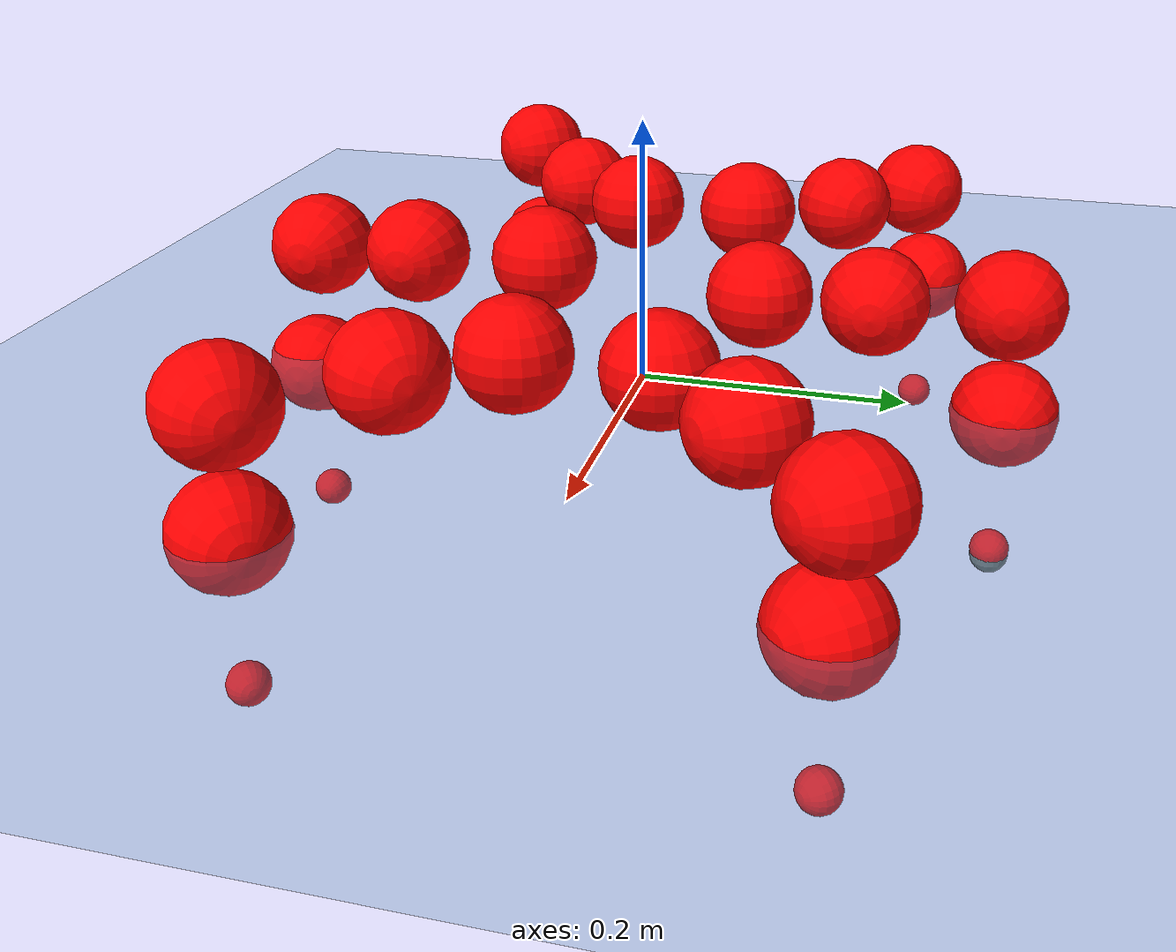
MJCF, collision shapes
<mujoco model="Golem">
  <compiler angle="radian" assetdir="assets" balanceinertia="true" inertiafromgeom="false"/>

  <option timestep="0.005" density="1.2" viscosity="2e-05"/>

  <size nkey="1"/>

  <visual>
    <quality shadowsize="8192"/>
    <map shadowclip="0.5"/>
  </visual>

  <default>
    <default class="/">
      <joint armature="0.01" damping="0.01" frictionloss="0.01"/>
      <geom contype="0" conaffinity="0" group="1" solref="-1000 -80"/>
      <site size="0.01 0.005 0.005" group="5"/>
      <general forcelimited="true" biastype="affine" gainprm="25" biasprm="0 -25 -0.5"/>
      <default class="visual">
        <geom type="mesh" group="2"/>
      </default>
      <default class="collision">
        <geom group="3"/>
      </default>
      <default class="foot">
        <geom size="0.01 0 0" condim="6" group="4" priority="1" solimp="0.015 1 0.01"/>
      </default>
      <default class="reward_collision_sphere">
        <geom group="5" rgba="1 0 0 1"/>
      </default>
    </default>
  </default>

  <asset>
    <texture type="skybox" colorspace="auto" name="//unnamed_texture_0" builtin="gradient" rgb1="0.95 0.95 0.95" rgb2="0.95 0.95 0.95" width="100" height="600"/>
    <texture type="2d" colorspace="auto" name="texplane" builtin="checker" rgb1="0.345 0.575 0.748" rgb2="0.345 0.575 0.748" markrgb="1 1 1" width="512" height="512"/>
    <material name="MatPlane" class="/" texture="texplane" texuniform="true" texrepeat="2 2" specular="0.9"/>
    <mesh name="body" class="/" file="body.stl" scale="0.001 0.001 0.001"/>
    <mesh name="coxa" class="/" file="coxa.stl" scale="0.001 0.001 0.001"/>
    <mesh name="femur" class="/" file="femur.stl" scale="0.001 0.001 0.001"/>
    <mesh name="tibia" class="/" file="tibia.stl" scale="0.001 0.001 0.001"/>
    <mesh name="tarsus" class="/" file="tarsus.stl" scale="0.001 0.001 0.001"/>
  </asset>

  <worldbody>
    <geom name="floor" class="/" size="100 100 0.125" type="plane" group="0" material="MatPlane"/>
    <light name="toplight_shadow" class="/" pos="0 0 5" dir="0.0990148 0.0990148 -0.990148" type="directional" ambient="0.04 0.04 0.04" diffuse="0.55 0.55 0.55" specular="0.12 0.12 0.12"/>
    <light name="toplight_fill" class="/" pos="0 0 5" dir="0.0990148 0.0990148 -0.990148" type="directional" castshadow="false" ambient="0.04 0.04 0.04" diffuse="0.3 0.3 0.3" specular="0.08 0.08 0.08"/>
    <body name="trunk" pos="0.00412888 0.0010832 0.0112196" quat="1 -0.000146024 0.000203342 -0.000761793">
      <inertial pos="-0.00446834 -0.00158155 -0.0101005" quat="0.999355 0.0191386 -0.00951149 0.0288512" mass="3.36409" diaginertia="0.0169944 0.00416004 0.0130109"/>
      <joint name="//unnamed_joint_0" type="free"/>
      <geom name="//unnamed_geom_1" class="/" pos="0 0 0.0678253" quat="1 0 0 0" type="mesh" rgba="0.9 0.9 0.9 1" mesh="body"/>
      <site name="imu" class="/" pos="0.145211 -0.00371637 0.0974249" size="0.00996898"/>
      <camera name="track" class="/" pos="0 -1.70524 0" quat="0.707107 0.707107 0 0" mode="trackcom"/>
      <camera name="ego_camera" class="/" pos="0.140179 0 0.105977" quat="-0.5 -0.5 0.5 0.5"/>
      <body name="coxa_RR" pos="-0.192586 -0.0709048 0.0751941" quat="0.38269 -7.31584e-05 8.45355e-05 -0.923877">
        <inertial pos="-0.00145466 0.0109926 0.00039216" quat="0.999993 -0.0034085 0.000936844 0.00104527" mass="0.232618" diaginertia="0.0183044 0.00459946 0.0150238"/>
        <joint name="coxa_joint_RR" class="/" pos="0 0 0" axis="0.0187857 -0.0608254 -0.997972" range="-3.12156 3.27069" armature="0.0125398" damping="0.0282917" frictionloss="0.0101575"/>
        <geom name="//unnamed_geom_2" class="/" type="mesh" rgba="0.2 0.2 0.2 1" mesh="coxa"/>
        <geom name="//unnamed_geom_3" class="reward_collision_sphere" size="0.0398759" pos="-0.0323491 0 0"/>
        <body name="femur_RR" pos="0.0649559 -0.000376767 -0.00605494" quat="0.499661 -0.499834 0.50015 0.500355">
          <inertial pos="0.00103018 -0.00509791 0.00506857" quat="0.999972 0.00555714 0.00191305 0.00455895" mass="0.191964" diaginertia="0.0145304 0.00454417 0.0131597"/>
          <joint name="femur_joint_RR" class="/" pos="0 0 0" axis="-0.00614027 -0.00177436 -0.99998" stiffness="0.0192191" range="-3.16739 3.33998" armature="0.0132105" damping="0.0135309" frictionloss="0.00647129"/>
          <geom name="//unnamed_geom_4" class="/" type="mesh" rgba="0.9 0.9 0.9 1" mesh="femur"/>
          <geom name="//unnamed_geom_5" class="reward_collision_sphere" size="0.0398759"/>
          <body name="tibia_RR" pos="-0.00973964 -0.0989806 -0.00680059" quat="0.0010787 0.999997 0.000964974 -0.00174208">
            <inertial pos="0.00899377 0.00578677 0.000268327" quat="0.999282 -0.0266111 -0.0106893 -0.0247437" mass="0.197567" diaginertia="0.0160985 0.00447688 0.0133959"/>
            <joint name="tibia_joint_RR" class="/" pos="0 0 0" axis="-0.0225755 0.00855444 0.999709" range="-2.92472 3.20547" armature="0.0132819" damping="0.032538" frictionloss="0.0103207"/>
            <geom name="//unnamed_geom_6" class="/" type="mesh" rgba="0.2 0.2 0.2 1" mesh="tibia"/>
            <geom name="//unnamed_geom_7" class="reward_collision_sphere" size="0.0398759"/>
            <body name="tarsus_RR" pos="0.0927555 -0.000893516 0.00107043" quat="1 -0.000700434 5.78481e-06 -0.000150765">
              <inertial pos="0.0659728 -0.00979451 0.00705922" quat="0.500885 0.491915 0.495289 0.511685" mass="0.201394" diaginertia="0.0142346 0.00422352 0.013445"/>
              <joint name="tarsus_joint_RR" class="/" pos="0 0 0" axis="0.00020183 -0.00553204 0.999985" stiffness="0.0540535" range="-3.13322 3.14212" armature="0.00592179" damping="0.0110592" frictionloss="0.00599329"/>
              <geom name="//unnamed_geom_8" class="/" type="mesh" rgba="0.9 0.9 0.9 1" mesh="tarsus"/>
              <geom name="foot_1" class="foot" size="0.0125179" pos="0.12077 0 0" quat="0 -0.707107 0 0.707107"/>
              <geom name="//unnamed_geom_10" class="reward_collision_sphere" size="0.0398759"/>
              <geom name="//unnamed_geom_11" class="reward_collision_sphere" size="0.0149535" pos="0.115918 0 0"/>
              <site name="foot_1" class="foot" pos="0.12077 0 0" quat="0 -0.707107 0 0.707107" size="0.00996898"/>
            </body>
          </body>
        </body>
      </body>
      <body name="coxa_RM" pos="-0.00279225 -0.110323 0.079001" quat="0.706721 -0.00322536 -0.00486275 -0.707468">
        <inertial pos="0.00926929 -7.09498e-06 0.00376656" quat="1 0.000671693 -0.000462199 5.90395e-05" mass="0.221146" diaginertia="0.0170033 0.00507894 0.0141299"/>
        <joint name="coxa_joint_RM" class="/" pos="0 0 0" axis="0.00318317 -0.00541094 -0.99998" stiffness="0.0199298" range="-2.90214 3.11231" armature="0.010909" damping="0" frictionloss="0.0100456"/>
        <geom name="//unnamed_geom_12" class="/" type="mesh" rgba="0.2 0.2 0.2 1" mesh="coxa"/>
        <geom name="//unnamed_geom_13" class="reward_collision_sphere" size="0.0398759" pos="-0.0323491 0 0"/>
        <body name="femur_RM" pos="0.06938 0.00221959 -0.00299454" quat="0.496185 -0.499724 0.501745 0.502323">
          <inertial pos="-0.004114 0.00344697 -0.00323258" quat="0.998903 -0.00938022 -0.043466 -0.0146982" mass="0.178981" diaginertia="0.0131073 0.00444217 0.0118551"/>
          <joint name="femur_joint_RM" class="/" pos="0 0 0" axis="0.000596065 -0.00802526 -0.999968" stiffness="0.0558236" range="-3.17214 3.11072" armature="0.00995836" damping="0.0265787" frictionloss="0.0116119"/>
          <geom name="//unnamed_geom_14" class="/" type="mesh" rgba="0.9 0.9 0.9 1" mesh="femur"/>
          <geom name="//unnamed_geom_15" class="reward_collision_sphere" size="0.0398759"/>
          <body name="tibia_RM" pos="0.00489525 -0.0851575 -0.00934668" quat="7.26503e-06 1 3.89637e-06 6.4135e-07">
            <inertial pos="0.00227338 -0.0125972 0.00120316" quat="0.999987 0.0047345 0.00161235 0.000121745" mass="0.170491" diaginertia="0.0128091 0.00390705 0.010772"/>
            <joint name="tibia_joint_RM" class="/" pos="0 0 0" axis="0.0248762 -0.0122814 0.999615" stiffness="0.000137402" range="-3.27686 3.39483" armature="0.00731245" damping="0.0587842" frictionloss="0.0105818"/>
            <geom name="//unnamed_geom_16" class="/" type="mesh" rgba="0.2 0.2 0.2 1" mesh="tibia"/>
            <geom name="//unnamed_geom_17" class="reward_collision_sphere" size="0.0398759"/>
            <body name="tarsus_RM" pos="0.10186 0.00987625 -0.00511073" quat="0.999993 0.00107409 -0.00100666 -0.00331604">
              <inertial pos="0.0613847 -0.0114617 -0.00287543" quat="0.499924 0.496097 0.505579 0.49835" mass="0.247969" diaginertia="0.0155856 0.00485585 0.0153712"/>
              <joint name="tarsus_joint_RM" class="/" pos="0 0 0" axis="0.0262091 -0.00569175 0.99964" range="-3.17305 3.15187" armature="0.00716844" damping="0" frictionloss="0.00992865"/>
              <geom name="//unnamed_geom_18" class="/" type="mesh" rgba="0.9 0.9 0.9 1" mesh="tarsus"/>
              <geom name="foot_2" class="foot" size="0.00880774" pos="0.12077 0 0" quat="0 -0.707107 0 0.707107"/>
              <geom name="//unnamed_geom_20" class="reward_collision_sphere" size="0.0398759"/>
              <geom name="//unnamed_geom_21" class="reward_collision_sphere" size="0.0149535" pos="0.115918 0 0"/>
              <site name="foot_2" class="foot" pos="0.12077 0 0" quat="0 -0.707107 0 0.707107" size="0.00996898"/>
            </body>
          </body>
        </body>
      </body>
      <body name="coxa_RF" pos="0.186001 -0.0680977 0.0730746" quat="0.92425 -0.00287554 -0.000432038 -0.381777">
        <inertial pos="0.00986076 -0.00121264 -0.00845528" quat="0.999638 0.00568047 -0.00371492 -0.0260409" mass="0.161945" diaginertia="0.0132168 0.00439686 0.0121606"/>
        <joint name="coxa_joint_RF" class="/" pos="0 0 0" axis="0.0221769 -0.0157613 -0.99963" stiffness="0.0122182" range="-3.02686 3.14435" armature="0.01441" damping="0" frictionloss="0.0069663"/>
        <geom name="//unnamed_geom_22" class="/" type="mesh" rgba="0.2 0.2 0.2 1" mesh="coxa"/>
        <geom name="//unnamed_geom_23" class="reward_collision_sphere" size="0.0398759" pos="-0.0323491 0 0"/>
        <body name="femur_RF" pos="0.0534278 -0.000902718 0.00642556" quat="0.496558 -0.503042 0.499401 0.500976">
          <inertial pos="0.000144252 0.00407588 0.000199121" quat="0.999999 -0.00116537 0.000824028 0.000634111" mass="0.253887" diaginertia="0.0145545 0.00534163 0.016471"/>
          <joint name="femur_joint_RF" class="/" pos="0 0 0" axis="0.00492613 -0.000138279 -0.999988" stiffness="0.0583111" range="-3.20616 3.35138" armature="0.0156553" damping="0.00658802" frictionloss="0.0158924"/>
          <geom name="//unnamed_geom_24" class="/" type="mesh" rgba="0.9 0.9 0.9 1" mesh="femur"/>
          <geom name="//unnamed_geom_25" class="reward_collision_sphere" size="0.0398759"/>
          <body name="tibia_RF" pos="0.00252206 -0.103156 -0.0113641" quat="0.000331928 1 -0.000221186 -0.000347421">
            <inertial pos="0.0100534 0.00131168 -0.000253212" quat="0.999981 0.00395662 -0.00281122 -0.00386368" mass="0.215566" diaginertia="0.0172879 0.00486634 0.014319"/>
            <joint name="tibia_joint_RF" class="/" pos="0 0 0" axis="-0.023682 -0.00724415 0.999693" stiffness="0.0213241" range="-3.26141 3.15646" armature="0.00998817" damping="0.0545089" frictionloss="0.00719437"/>
            <geom name="//unnamed_geom_26" class="/" type="mesh" rgba="0.2 0.2 0.2 1" mesh="tibia"/>
            <geom name="//unnamed_geom_27" class="reward_collision_sphere" size="0.0398759"/>
            <body name="tarsus_RF" pos="0.0920404 0.000206359 0.00991094" quat="0.999994 0.00146807 -0.0032473 -0.000130244">
              <inertial pos="0.0740541 0.00553461 -0.00159211" quat="0.507391 0.4866 0.543968 0.458119" mass="0.207144" diaginertia="0.0154716 0.00435127 0.0161451"/>
              <joint name="tarsus_joint_RF" class="/" pos="0 0 0" axis="-0.00965778 -0.0241324 0.999662" stiffness="0.00151134" range="-3.11054 3.15924" armature="0.015161" damping="0.0173964" frictionloss="0.0145032"/>
              <geom name="//unnamed_geom_28" class="/" type="mesh" rgba="0.9 0.9 0.9 1" mesh="tarsus"/>
              <geom name="foot_3" class="foot" size="0.0100513" pos="0.12077 0 0" quat="0 -0.707107 0 0.707107"/>
              <geom name="//unnamed_geom_30" class="reward_collision_sphere" size="0.0398759"/>
              <geom name="//unnamed_geom_31" class="reward_collision_sphere" size="0.0149535" pos="0.115918 0 0"/>
              <site name="foot_3" class="foot" pos="0.12077 0 0" quat="0 -0.707107 0 0.707107" size="0.00996898"/>
            </body>
          </body>
        </body>
      </body>
      <body name="coxa_LR" pos="-0.189957 0.0710264 0.0761672" quat="0.382341 -0.000404646 0.000468917 0.924021">
        <inertial pos="-0.00320166 0.000814042 -0.00122119" quat="0.998502 -0.0446612 -0.0104411 -0.0298203" mass="0.188316" diaginertia="0.0145126 0.00374401 0.0131381"/>
        <joint name="coxa_joint_LR" class="/" pos="0 0 0" axis="0.0116874 0.0159576 -0.999804" range="-3.17146 3.05391" armature="0.00551361" damping="0.0122314" frictionloss="0.00851447"/>
        <geom name="//unnamed_geom_32" class="/" type="mesh" rgba="0.2 0.2 0.2 1" mesh="coxa"/>
        <geom name="//unnamed_geom_33" class="reward_collision_sphere" size="0.0398759" pos="-0.0323491 0 0"/>
        <body name="femur_LR" pos="0.0658917 -0.00621827 -0.00846873" quat="0.501218 -0.500515 0.501316 0.496938">
          <inertial pos="0.0089686 0.0106558 -0.0106314" quat="0.999997 0.0018506 0.0011399 0.00128452" mass="0.161678" diaginertia="0.0128581 0.00371697 0.0129528"/>
          <joint name="femur_joint_LR" class="/" pos="0 0 0" axis="0.0207363 -0.0523353 0.998414" stiffness="0.0240812" range="-2.99985 3.29339" armature="0.00363073" damping="0.0182841" frictionloss="0.0144004"/>
          <geom name="//unnamed_geom_34" class="/" type="mesh" rgba="0.9 0.9 0.9 1" mesh="femur"/>
          <geom name="//unnamed_geom_35" class="reward_collision_sphere" size="0.0398759"/>
          <body name="tibia_LR" pos="2.832e-06 -0.0843936 0.00176419" quat="-0.000624545 1 -0.000263387 -6.19793e-05">
            <inertial pos="0.00041439 0.0105875 0.000862864" quat="0.999711 -0.00668789 0.00364351 -0.0228115" mass="0.236831" diaginertia="0.017032 0.0045895 0.0166057"/>
            <joint name="tibia_joint_LR" class="/" pos="0 0 0" axis="-0.0401527 0.0294901 -0.998758" stiffness="0.0489471" range="-3.11325 3.33522" armature="0.0099335" damping="0.00809106" frictionloss="0.00651861"/>
            <geom name="//unnamed_geom_36" class="/" type="mesh" rgba="0.2 0.2 0.2 1" mesh="tibia"/>
            <geom name="//unnamed_geom_37" class="reward_collision_sphere" size="0.0398759"/>
            <body name="tarsus_LR" pos="0.0831325 0.00947865 0.00607694" quat="0.999994 0.00318343 -0.000803055 0.000505119">
              <inertial pos="0.0683205 -0.00397486 0.00795791" quat="0.495833 0.501158 0.498321 0.504644" mass="0.217304" diaginertia="0.0151152 0.0042548 0.0133706"/>
              <joint name="tarsus_joint_LR" class="/" pos="0 0 0" axis="-0.00987017 0.00518468 -0.999938" stiffness="0.0193621" range="-2.98248 3.13182" armature="0.0143773" damping="0.0181452" frictionloss="0.0092791"/>
              <geom name="//unnamed_geom_38" class="/" type="mesh" rgba="0.9 0.9 0.9 1" mesh="tarsus"/>
              <geom name="foot_4" class="foot" size="0.00994872" pos="0.12077 0 0" quat="0.707107 0 -0.707107 0"/>
              <geom name="//unnamed_geom_40" class="reward_collision_sphere" size="0.0398759"/>
              <geom name="//unnamed_geom_41" class="reward_collision_sphere" size="0.0149535" pos="0.115918 0 0"/>
              <site name="foot_4" class="foot" pos="0.12077 0 0" quat="0.707107 0 -0.707107 0" size="0.00996898"/>
            </body>
          </body>
        </body>
      </body>
      <body name="coxa_LM" pos="-0.0108499 0.118474 0.0619524" quat="0.706669 0.000231265 0.000194424 0.707544">
        <inertial pos="-0.00617952 -0.00281707 -0.00333106" quat="0.999697 -0.023848 0.00600955 -0.000655159" mass="0.217344" diaginertia="0.0128416 0.00467412 0.0128823"/>
        <joint name="coxa_joint_LM" class="/" pos="0 0 0" axis="0.0409803 -0.0287495 -0.998746" stiffness="0.0175991" range="-3.22166 2.90321" armature="0.0099246" damping="0.0195524" frictionloss="0.00917399"/>
        <geom name="//unnamed_geom_42" class="/" type="mesh" rgba="0.2 0.2 0.2 1" mesh="coxa"/>
        <geom name="//unnamed_geom_43" class="reward_collision_sphere" size="0.0398759" pos="-0.0323491 0 0"/>
        <body name="femur_LM" pos="0.0524242 0.00076425 0.00209626" quat="0.502561 -0.499868 0.496348 0.501201">
          <inertial pos="-0.00744218 0.000259128 0.00683683" quat="0.999968 0.00674428 0.00279533 -0.00332327" mass="0.153967" diaginertia="0.0132588 0.00404992 0.0107746"/>
          <joint name="femur_joint_LM" class="/" pos="0 0 0" axis="0.036734 0.0149818 0.999213" range="-2.93259 3.34403" armature="0.00875567" damping="0" frictionloss="0.00652423"/>
          <geom name="//unnamed_geom_44" class="/" type="mesh" rgba="0.9 0.9 0.9 1" mesh="femur"/>
          <geom name="//unnamed_geom_45" class="reward_collision_sphere" size="0.0398759"/>
          <body name="tibia_LM" pos="-0.00298272 -0.0961432 0.00671841" quat="-0.000364958 0.999999 -0.000753194 -0.000789788">
            <inertial pos="-0.00684114 -0.00519629 0.001636" quat="0.999876 -0.0150467 -0.000881273 0.00449328" mass="0.175576" diaginertia="0.0132642 0.00480034 0.0115193"/>
            <joint name="tibia_joint_LM" class="/" pos="0 0 0" axis="0.0340337 -0.00270739 -0.999417" stiffness="0.0637805" range="-3.16603 3.1355" armature="0.0149616" damping="0.0354131" frictionloss="0.00920817"/>
            <geom name="//unnamed_geom_46" class="/" type="mesh" rgba="0.2 0.2 0.2 1" mesh="tibia"/>
            <geom name="//unnamed_geom_47" class="reward_collision_sphere" size="0.0398759"/>
            <body name="tarsus_LM" pos="0.0861412 0.0026873 -0.000867357" quat="1 0.000112707 6.00541e-05 -0.00020741">
              <inertial pos="0.0633518 -0.000454542 -0.00842693" quat="0.501213 0.505541 0.511886 0.480819" mass="0.20887" diaginertia="0.0167157 0.00403888 0.0131299"/>
              <joint name="tarsus_joint_LM" class="/" pos="0 0 0" axis="0.00531188 0.0052412 -0.999972" stiffness="0.0356177" range="-3.08794 3.17258" armature="0.0100173" damping="0" frictionloss="0.0100953"/>
              <geom name="//unnamed_geom_48" class="/" type="mesh" rgba="0.9 0.9 0.9 1" mesh="tarsus"/>
              <geom name="foot_5" class="foot" size="0.0145966" pos="0.12077 0 0" quat="0.707107 0 -0.707107 0"/>
              <geom name="//unnamed_geom_50" class="reward_collision_sphere" size="0.0398759"/>
              <geom name="//unnamed_geom_51" class="reward_collision_sphere" size="0.0149535" pos="0.115918 0 0"/>
              <site name="foot_5" class="foot" pos="0.12077 0 0" quat="0.707107 0 -0.707107 0" size="0.00996898"/>
            </body>
          </body>
        </body>
      </body>
      <body name="coxa_LF" pos="0.18075 0.0741646 0.0701577" quat="0.922907 0.00449222 0.0010792 0.384995">
        <inertial pos="-0.00113208 -0.00042018 -0.00838473" quat="0.999956 -0.00650954 -0.00353006 0.00575126" mass="0.210283" diaginertia="0.0140517 0.00546907 0.0138439"/>
        <joint name="coxa_joint_LF" class="/" pos="0 0 0" axis="0.0207422 -0.0395362 -0.999003" stiffness="0.0153527" range="-3.15269 3.14653" armature="0.0101311" damping="0.00320058" frictionloss="0.0142713"/>
        <geom name="//unnamed_geom_52" class="/" type="mesh" rgba="0.2 0.2 0.2 1" mesh="coxa"/>
        <geom name="//unnamed_geom_53" class="reward_collision_sphere" size="0.0398759" pos="-0.0323491 0 0"/>
        <body name="femur_LF" pos="0.0566984 0.00501863 -0.00135054" quat="0.498634 -0.499656 0.50068 0.501026">
          <inertial pos="0.00150893 0.000921469 -0.0104121" quat="0.999406 -0.0107129 0.0182387 0.0271966" mass="0.165859" diaginertia="0.0159956 0.00458619 0.0134676"/>
          <joint name="femur_joint_LF" class="/" pos="0 0 0" axis="-0.0234967 -0.0315567 0.999226" stiffness="0.00603296" range="-3.13403 3.13204" armature="0.00922658" damping="0.0153236" frictionloss="0.00523587"/>
          <geom name="//unnamed_geom_54" class="/" type="mesh" rgba="0.9 0.9 0.9 1" mesh="femur"/>
          <geom name="//unnamed_geom_55" class="reward_collision_sphere" size="0.0398759"/>
          <body name="tibia_LF" pos="0.00141215 -0.104752 -0.00868844" quat="-0.00297223 0.999985 0.00398987 0.00242675">
            <inertial pos="-0.000344206 -0.00111035 0.00806157" quat="0.998544 -0.0222441 -0.000278159 -0.0491449" mass="0.178628" diaginertia="0.0125028 0.00440921 0.0131584"/>
            <joint name="tibia_joint_LF" class="/" pos="0 0 0" axis="0.000729594 -0.000900394 -0.999999" stiffness="0.041341" range="-3.39078 3.05579" armature="0.00996856" damping="0" frictionloss="0.0100287"/>
            <geom name="//unnamed_geom_56" class="/" type="mesh" rgba="0.2 0.2 0.2 1" mesh="tibia"/>
            <geom name="//unnamed_geom_57" class="reward_collision_sphere" size="0.0398759"/>
            <body name="tarsus_LF" pos="0.0843059 -0.00874415 0.000166991" quat="0.999997 -0.000376948 -0.000299303 0.00233424">
              <inertial pos="0.0761822 0.00277863 0.00156282" quat="0.499569 0.500221 0.500606 0.499603" mass="0.231436" diaginertia="0.0169049 0.00528006 0.0125727"/>
              <joint name="tarsus_joint_LF" class="/" pos="0 0 0" axis="0.0372459 -0.0297502 -0.998863" stiffness="0.0409396" range="-3.16813 3.31072" armature="0.00468774" damping="0" frictionloss="0.00391768"/>
              <geom name="//unnamed_geom_58" class="/" type="mesh" rgba="0.9 0.9 0.9 1" mesh="tarsus"/>
              <geom name="foot_6" class="foot" size="0.00933784" pos="0.12077 0 0" quat="0.707107 0 -0.707107 0"/>
              <geom name="//unnamed_geom_60" class="reward_collision_sphere" size="0.0398759"/>
              <geom name="//unnamed_geom_61" class="reward_collision_sphere" size="0.0149535" pos="0.115918 0 0"/>
              <site name="foot_6" class="foot" pos="0.12077 0 0" quat="0.707107 0 -0.707107 0" size="0.00996898"/>
            </body>
          </body>
        </body>
      </body>
    </body>
  </worldbody>

  <contact>
    <pair class="/" geom1="floor" geom2="foot_1" name="//unnamed_contact_0"/>
    <pair class="/" geom1="floor" geom2="foot_2" name="//unnamed_contact_1"/>
    <pair class="/" geom1="floor" geom2="foot_3" name="//unnamed_contact_2"/>
    <pair class="/" geom1="floor" geom2="foot_4" name="//unnamed_contact_3"/>
    <pair class="/" geom1="floor" geom2="foot_5" name="//unnamed_contact_4"/>
    <pair class="/" geom1="floor" geom2="foot_6" name="//unnamed_contact_5"/>
  </contact>

  <actuator>
    <general name="coxa_joint_RR" class="/" joint="coxa_joint_RR" forcerange="-5.61372 5.61372" gainprm="23.9673" biasprm="0 -23.9673 -0.496378"/>
    <general name="femur_joint_RR" class="/" joint="femur_joint_RR" forcerange="-5.23508 5.23508" gainprm="23.9673" biasprm="0 -23.9673 -0.496378"/>
    <general name="tibia_joint_RR" class="/" joint="tibia_joint_RR" forcerange="-9.42508 9.42508" gainprm="23.9673" biasprm="0 -23.9673 -0.496378"/>
    <general name="tarsus_joint_RR" class="/" joint="tarsus_joint_RR" forcerange="-9.62755 9.62755" gainprm="23.9673" biasprm="0 -23.9673 -0.496378"/>
    <general name="coxa_joint_RM" class="/" joint="coxa_joint_RM" forcerange="-10.1027 10.1027" gainprm="23.9673" biasprm="0 -23.9673 -0.496378"/>
    <general name="femur_joint_RM" class="/" joint="femur_joint_RM" forcerange="-7.13897 7.13897" gainprm="23.9673" biasprm="0 -23.9673 -0.496378"/>
    <general name="tibia_joint_RM" class="/" joint="tibia_joint_RM" forcerange="-6.83893 6.83893" gainprm="23.9673" biasprm="0 -23.9673 -0.496378"/>
    <general name="tarsus_joint_RM" class="/" joint="tarsus_joint_RM" forcerange="-6.91844 6.91844" gainprm="23.9673" biasprm="0 -23.9673 -0.496378"/>
    <general name="coxa_joint_RF" class="/" joint="coxa_joint_RF" forcerange="-7.47032 7.47032" gainprm="23.9673" biasprm="0 -23.9673 -0.496378"/>
    <general name="femur_joint_RF" class="/" joint="femur_joint_RF" forcerange="-3.89177 3.89177" gainprm="23.9673" biasprm="0 -23.9673 -0.496378"/>
    <general name="tibia_joint_RF" class="/" joint="tibia_joint_RF" forcerange="-4.3648 4.3648" gainprm="23.9673" biasprm="0 -23.9673 -0.496378"/>
    <general name="tarsus_joint_RF" class="/" joint="tarsus_joint_RF" forcerange="-4.57943 4.57943" gainprm="23.9673" biasprm="0 -23.9673 -0.496378"/>
    <general name="coxa_joint_LR" class="/" joint="coxa_joint_LR" forcerange="-7.45801 7.45801" gainprm="23.9673" biasprm="0 -23.9673 -0.496378"/>
    <general name="femur_joint_LR" class="/" joint="femur_joint_LR" forcerange="-7.7165 7.7165" gainprm="23.9673" biasprm="0 -23.9673 -0.496378"/>
    <general name="tibia_joint_LR" class="/" joint="tibia_joint_LR" forcerange="-4.00534 4.00534" gainprm="23.9673" biasprm="0 -23.9673 -0.496378"/>
    <general name="tarsus_joint_LR" class="/" joint="tarsus_joint_LR" forcerange="-4.36687 4.36687" gainprm="23.9673" biasprm="0 -23.9673 -0.496378"/>
    <general name="coxa_joint_LM" class="/" joint="coxa_joint_LM" forcerange="-7.61955 7.61955" gainprm="23.9673" biasprm="0 -23.9673 -0.496378"/>
    <general name="femur_joint_LM" class="/" joint="femur_joint_LM" forcerange="-7.14016 7.14016" gainprm="23.9673" biasprm="0 -23.9673 -0.496378"/>
    <general name="tibia_joint_LM" class="/" joint="tibia_joint_LM" forcerange="-7.24578 7.24578" gainprm="23.9673" biasprm="0 -23.9673 -0.496378"/>
    <general name="tarsus_joint_LM" class="/" joint="tarsus_joint_LM" forcerange="-8.20506 8.20506" gainprm="23.9673" biasprm="0 -23.9673 -0.496378"/>
    <general name="coxa_joint_LF" class="/" joint="coxa_joint_LF" forcerange="-6.97951 6.97951" gainprm="23.9673" biasprm="0 -23.9673 -0.496378"/>
    <general name="femur_joint_LF" class="/" joint="femur_joint_LF" forcerange="-4.66156 4.66156" gainprm="23.9673" biasprm="0 -23.9673 -0.496378"/>
    <general name="tibia_joint_LF" class="/" joint="tibia_joint_LF" forcerange="-4.86328 4.86328" gainprm="23.9673" biasprm="0 -23.9673 -0.496378"/>
    <general name="tarsus_joint_LF" class="/" joint="tarsus_joint_LF" forcerange="-7.44098 7.44098" gainprm="23.9673" biasprm="0 -23.9673 -0.496378"/>
  </actuator>

  <sensor>
    <gyro site="imu" name="imu_angular_velocity"/>
    <velocimeter site="imu" name="imu_linear_velocity"/>
    <framelinvel objtype="site" objname="foot_1" name="foot_1_global_linear_velocity"/>
    <framelinvel objtype="site" objname="foot_2" name="foot_2_global_linear_velocity"/>
    <framelinvel objtype="site" objname="foot_3" name="foot_3_global_linear_velocity"/>
    <framelinvel objtype="site" objname="foot_4" name="foot_4_global_linear_velocity"/>
    <framelinvel objtype="site" objname="foot_5" name="foot_5_global_linear_velocity"/>
    <framelinvel objtype="site" objname="foot_6" name="foot_6_global_linear_velocity"/>
  </sensor>

  <keyframe>
    <key name="home" qpos="0 0 0.1457 1 0 0 0 0 0 0 0 0 0 0 0 0 0 0 0 0 0 0 0 0 0 0 0 0 0 0 0"/>
  </keyframe>
</mujoco>
